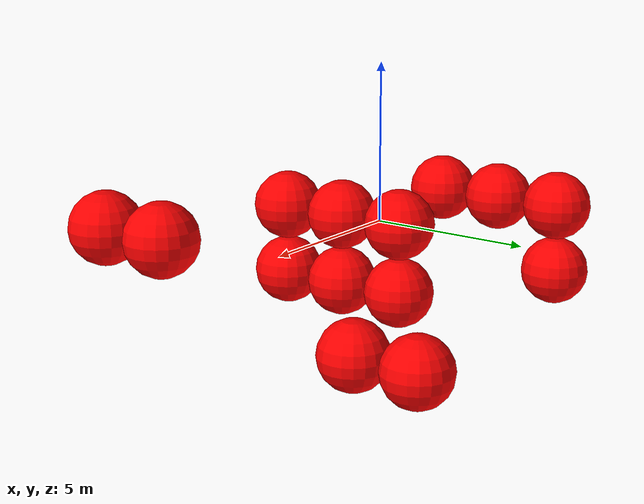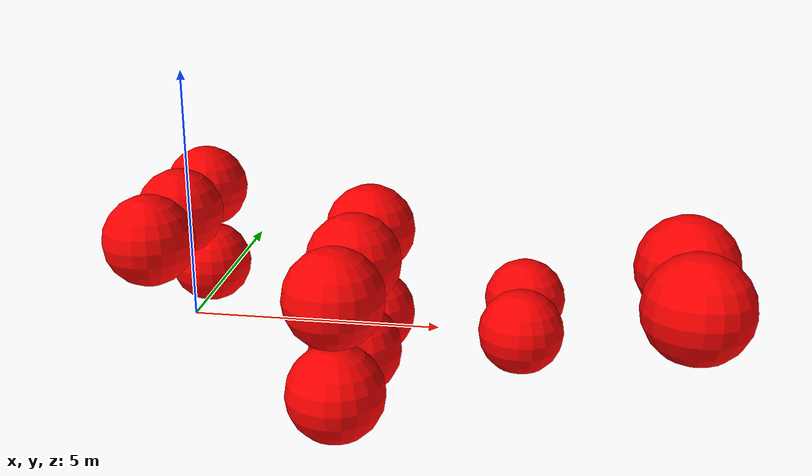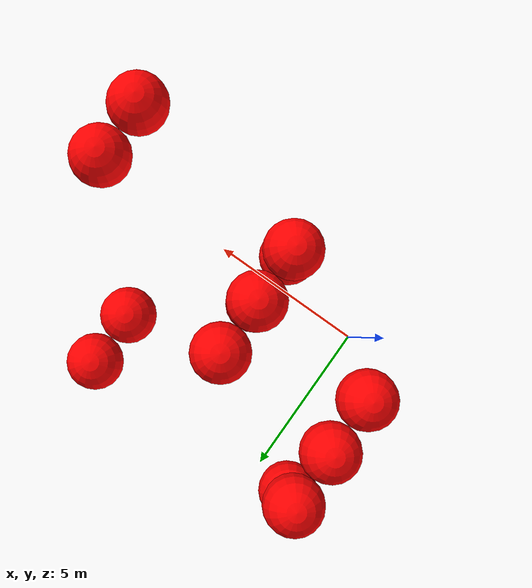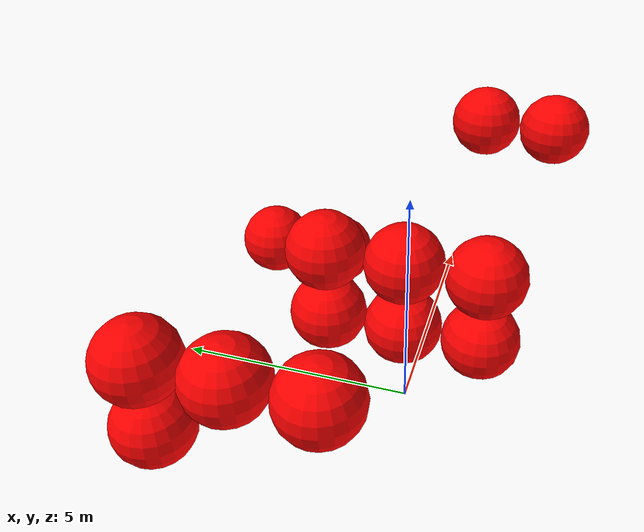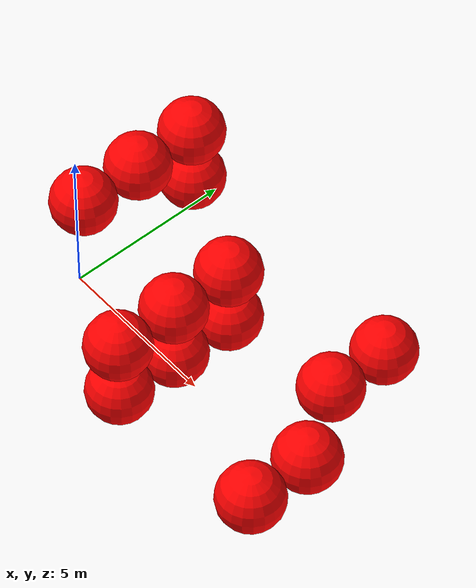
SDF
<sdf version="1.8">
 <world name="3d_world">
  <model name="obstacle_1" canonical_link="obstacle">
   <static>true</static>
   <pose relative_to="world">3.13 -1.17 -1.00 0 0 0</pose>
   <link name="obstacle">
    <pose relative_to="__model__">0.0 0 0.0 0 0 0</pose>
    <visual name="visual">
     <geometry><sphere><radius>1.00</radius></sphere></geometry>
     <material>
      <ambient>1.0 0.0 0.0 1</ambient>
      <diffuse>1.0 0.0 0.0 1</diffuse>
      <specular>1.0 0.0 0.0 1</specular>
     </material>
    </visual>
    <collision name="collision"><geometry><sphere><radius>1.00</radius></sphere></geometry></collision>
    <enable_gravity>false</enable_gravity>
   </link>
   <plugin filename="ignition-gazebo-velocity-control-system" name="ignition::gazebo::systems::VelocityControl">
    <initial_linear>0.00 0.00 0.00</initial_linear>
    <initial_angular>0 0 0</initial_angular>
   </plugin>
   <plugin filename="ignition-gazebo-odometry-publisher-system" name="ignition::gazebo::systems::OdometryPublisher">
    <dimensions>3</dimensions>
   </plugin>
  </model>
  <model name="obstacle_2" canonical_link="obstacle">
   <static>true</static>
   <pose relative_to="world">3.13 0.83 -1.00 0 0 0</pose>
   <link name="obstacle">
    <pose relative_to="__model__">0.0 0 0.0 0 0 0</pose>
    <visual name="visual">
     <geometry><sphere><radius>1.00</radius></sphere></geometry>
     <material>
      <ambient>1.0 0.0 0.0 1</ambient>
      <diffuse>1.0 0.0 0.0 1</diffuse>
      <specular>1.0 0.0 0.0 1</specular>
     </material>
    </visual>
    <collision name="collision"><geometry><sphere><radius>1.00</radius></sphere></geometry></collision>
    <enable_gravity>false</enable_gravity>
   </link>
   <plugin filename="ignition-gazebo-velocity-control-system" name="ignition::gazebo::systems::VelocityControl">
    <initial_linear>0.00 0.00 0.00</initial_linear>
    <initial_angular>0 0 0</initial_angular>
   </plugin>
   <plugin filename="ignition-gazebo-odometry-publisher-system" name="ignition::gazebo::systems::OdometryPublisher">
    <dimensions>3</dimensions>
   </plugin>
  </model>
  <model name="obstacle_3" canonical_link="obstacle">
   <static>true</static>
   <pose relative_to="world">3.13 2.83 -1.00 0 0 0</pose>
   <link name="obstacle">
    <pose relative_to="__model__">0.0 0 0.0 0 0 0</pose>
    <visual name="visual">
     <geometry><sphere><radius>1.00</radius></sphere></geometry>
     <material>
      <ambient>1.0 0.0 0.0 1</ambient>
      <diffuse>1.0 0.0 0.0 1</diffuse>
      <specular>1.0 0.0 0.0 1</specular>
     </material>
    </visual>
    <collision name="collision"><geometry><sphere><radius>1.00</radius></sphere></geometry></collision>
    <enable_gravity>false</enable_gravity>
   </link>
   <plugin filename="ignition-gazebo-velocity-control-system" name="ignition::gazebo::systems::VelocityControl">
    <initial_linear>0.00 0.00 0.00</initial_linear>
    <initial_angular>0 0 0</initial_angular>
   </plugin>
   <plugin filename="ignition-gazebo-odometry-publisher-system" name="ignition::gazebo::systems::OdometryPublisher">
    <dimensions>3</dimensions>
   </plugin>
  </model>
  <model name="obstacle_4" canonical_link="obstacle">
   <static>true</static>
   <pose relative_to="world">3.13 -1.17 1.00 0 0 0</pose>
   <link name="obstacle">
    <pose relative_to="__model__">0.0 0 0.0 0 0 0</pose>
    <visual name="visual">
     <geometry><sphere><radius>1.00</radius></sphere></geometry>
     <material>
      <ambient>1.0 0.0 0.0 1</ambient>
      <diffuse>1.0 0.0 0.0 1</diffuse>
      <specular>1.0 0.0 0.0 1</specular>
     </material>
    </visual>
    <collision name="collision"><geometry><sphere><radius>1.00</radius></sphere></geometry></collision>
    <enable_gravity>false</enable_gravity>
   </link>
   <plugin filename="ignition-gazebo-velocity-control-system" name="ignition::gazebo::systems::VelocityControl">
    <initial_linear>0.00 0.00 0.00</initial_linear>
    <initial_angular>0 0 0</initial_angular>
   </plugin>
   <plugin filename="ignition-gazebo-odometry-publisher-system" name="ignition::gazebo::systems::OdometryPublisher">
    <dimensions>3</dimensions>
   </plugin>
  </model>
  <model name="obstacle_5" canonical_link="obstacle">
   <static>true</static>
   <pose relative_to="world">3.13 0.83 1.00 0 0 0</pose>
   <link name="obstacle">
    <pose relative_to="__model__">0.0 0 0.0 0 0 0</pose>
    <visual name="visual">
     <geometry><sphere><radius>1.00</radius></sphere></geometry>
     <material>
      <ambient>1.0 0.0 0.0 1</ambient>
      <diffuse>1.0 0.0 0.0 1</diffuse>
      <specular>1.0 0.0 0.0 1</specular>
     </material>
    </visual>
    <collision name="collision"><geometry><sphere><radius>1.00</radius></sphere></geometry></collision>
    <enable_gravity>false</enable_gravity>
   </link>
   <plugin filename="ignition-gazebo-velocity-control-system" name="ignition::gazebo::systems::VelocityControl">
    <initial_linear>0.00 0.00 0.00</initial_linear>
    <initial_angular>0 0 0</initial_angular>
   </plugin>
   <plugin filename="ignition-gazebo-odometry-publisher-system" name="ignition::gazebo::systems::OdometryPublisher">
    <dimensions>3</dimensions>
   </plugin>
  </model>
  <model name="obstacle_6" canonical_link="obstacle">
   <static>true</static>
   <pose relative_to="world">3.13 2.83 1.00 0 0 0</pose>
   <link name="obstacle">
    <pose relative_to="__model__">0.0 0 0.0 0 0 0</pose>
    <visual name="visual">
     <geometry><sphere><radius>1.00</radius></sphere></geometry>
     <material>
      <ambient>1.0 0.0 0.0 1</ambient>
      <diffuse>1.0 0.0 0.0 1</diffuse>
      <specular>1.0 0.0 0.0 1</specular>
     </material>
    </visual>
    <collision name="collision"><geometry><sphere><radius>1.00</radius></sphere></geometry></collision>
    <enable_gravity>false</enable_gravity>
   </link>
   <plugin filename="ignition-gazebo-velocity-control-system" name="ignition::gazebo::systems::VelocityControl">
    <initial_linear>0.00 0.00 0.00</initial_linear>
    <initial_angular>0 0 0</initial_angular>
   </plugin>
   <plugin filename="ignition-gazebo-odometry-publisher-system" name="ignition::gazebo::systems::OdometryPublisher">
    <dimensions>3</dimensions>
   </plugin>
  </model>
  <model name="obstacle_15" canonical_link="obstacle">
   <static>true</static>
   <pose relative_to="world">-1.47 5.37 -1.00 0 0 0</pose>
   <link name="obstacle">
    <pose relative_to="__model__">0.0 0 0.0 0 0 0</pose>
    <visual name="visual">
     <geometry><sphere><radius>1.00</radius></sphere></geometry>
     <material>
      <ambient>1.0 0.0 0.0 1</ambient>
      <diffuse>1.0 0.0 0.0 1</diffuse>
      <specular>1.0 0.0 0.0 1</specular>
     </material>
    </visual>
    <collision name="collision"><geometry><sphere><radius>1.00</radius></sphere></geometry></collision>
    <enable_gravity>false</enable_gravity>
   </link>
   <plugin filename="ignition-gazebo-velocity-control-system" name="ignition::gazebo::systems::VelocityControl">
    <initial_linear>0.00 0.00 0.00</initial_linear>
    <initial_angular>0 0 0</initial_angular>
   </plugin>
   <plugin filename="ignition-gazebo-odometry-publisher-system" name="ignition::gazebo::systems::OdometryPublisher">
    <dimensions>3</dimensions>
   </plugin>
  </model>
  <model name="obstacle_16" canonical_link="obstacle">
   <static>true</static>
   <pose relative_to="world">-1.47 1.37 1.00 0 0 0</pose>
   <link name="obstacle">
    <pose relative_to="__model__">0.0 0 0.0 0 0 0</pose>
    <visual name="visual">
     <geometry><sphere><radius>1.00</radius></sphere></geometry>
     <material>
      <ambient>1.0 0.0 0.0 1</ambient>
      <diffuse>1.0 0.0 0.0 1</diffuse>
      <specular>1.0 0.0 0.0 1</specular>
     </material>
    </visual>
    <collision name="collision"><geometry><sphere><radius>1.00</radius></sphere></geometry></collision>
    <enable_gravity>false</enable_gravity>
   </link>
   <plugin filename="ignition-gazebo-velocity-control-system" name="ignition::gazebo::systems::VelocityControl">
    <initial_linear>0.00 0.00 0.00</initial_linear>
    <initial_angular>0 0 0</initial_angular>
   </plugin>
   <plugin filename="ignition-gazebo-odometry-publisher-system" name="ignition::gazebo::systems::OdometryPublisher">
    <dimensions>3</dimensions>
   </plugin>
  </model>
  <model name="obstacle_17" canonical_link="obstacle">
   <static>true</static>
   <pose relative_to="world">-1.47 3.37 1.00 0 0 0</pose>
   <link name="obstacle">
    <pose relative_to="__model__">0.0 0 0.0 0 0 0</pose>
    <visual name="visual">
     <geometry><sphere><radius>1.00</radius></sphere></geometry>
     <material>
      <ambient>1.0 0.0 0.0 1</ambient>
      <diffuse>1.0 0.0 0.0 1</diffuse>
      <specular>1.0 0.0 0.0 1</specular>
     </material>
    </visual>
    <collision name="collision"><geometry><sphere><radius>1.00</radius></sphere></geometry></collision>
    <enable_gravity>false</enable_gravity>
   </link>
   <plugin filename="ignition-gazebo-velocity-control-system" name="ignition::gazebo::systems::VelocityControl">
    <initial_linear>0.00 0.00 0.00</initial_linear>
    <initial_angular>0 0 0</initial_angular>
   </plugin>
   <plugin filename="ignition-gazebo-odometry-publisher-system" name="ignition::gazebo::systems::OdometryPublisher">
    <dimensions>3</dimensions>
   </plugin>
  </model>
  <model name="obstacle_18" canonical_link="obstacle">
   <static>true</static>
   <pose relative_to="world">-1.47 5.37 1.00 0 0 0</pose>
   <link name="obstacle">
    <pose relative_to="__model__">0.0 0 0.0 0 0 0</pose>
    <visual name="visual">
     <geometry><sphere><radius>1.00</radius></sphere></geometry>
     <material>
      <ambient>1.0 0.0 0.0 1</ambient>
      <diffuse>1.0 0.0 0.0 1</diffuse>
      <specular>1.0 0.0 0.0 1</specular>
     </material>
    </visual>
    <collision name="collision"><geometry><sphere><radius>1.00</radius></sphere></geometry></collision>
    <enable_gravity>false</enable_gravity>
   </link>
   <plugin filename="ignition-gazebo-velocity-control-system" name="ignition::gazebo::systems::VelocityControl">
    <initial_linear>0.00 0.00 0.00</initial_linear>
    <initial_angular>0 0 0</initial_angular>
   </plugin>
   <plugin filename="ignition-gazebo-odometry-publisher-system" name="ignition::gazebo::systems::OdometryPublisher">
    <dimensions>3</dimensions>
   </plugin>
  </model>
  <model name="obstacle_23" canonical_link="obstacle">
   <static>false</static>
   <pose relative_to="world">6.52 3.70 -1.67 0 0 0</pose>
   <link name="obstacle">
    <pose relative_to="__model__">0.0 0 0.0 0 0 0</pose>
    <visual name="visual">
     <geometry><sphere><radius>1.00</radius></sphere></geometry>
     <material>
      <ambient>1.0 0.0 0.0 1</ambient>
      <diffuse>1.0 0.0 0.0 1</diffuse>
      <specular>1.0 0.0 0.0 1</specular>
     </material>
    </visual>
    <collision name="collision"><geometry><sphere><radius>1.00</radius></sphere></geometry></collision>
    <enable_gravity>false</enable_gravity>
   </link>
   <plugin filename="ignition-gazebo-velocity-control-system" name="ignition::gazebo::systems::VelocityControl">
    <initial_linear>0.00 -1.62 0.60</initial_linear>
    <initial_angular>0 0 0</initial_angular>
   </plugin>
   <plugin filename="ignition-gazebo-odometry-publisher-system" name="ignition::gazebo::systems::OdometryPublisher">
    <dimensions>3</dimensions>
   </plugin>
  </model>
  <model name="obstacle_24" canonical_link="obstacle">
   <static>false</static>
   <pose relative_to="world">6.52 5.70 -1.67 0 0 0</pose>
   <link name="obstacle">
    <pose relative_to="__model__">0.0 0 0.0 0 0 0</pose>
    <visual name="visual">
     <geometry><sphere><radius>1.00</radius></sphere></geometry>
     <material>
      <ambient>1.0 0.0 0.0 1</ambient>
      <diffuse>1.0 0.0 0.0 1</diffuse>
      <specular>1.0 0.0 0.0 1</specular>
     </material>
    </visual>
    <collision name="collision"><geometry><sphere><radius>1.00</radius></sphere></geometry></collision>
    <enable_gravity>false</enable_gravity>
   </link>
   <plugin filename="ignition-gazebo-velocity-control-system" name="ignition::gazebo::systems::VelocityControl">
    <initial_linear>0.00 -1.62 0.60</initial_linear>
    <initial_angular>0 0 0</initial_angular>
   </plugin>
   <plugin filename="ignition-gazebo-odometry-publisher-system" name="ignition::gazebo::systems::OdometryPublisher">
    <dimensions>3</dimensions>
   </plugin>
  </model>
  <model name="obstacle_25" canonical_link="obstacle">
   <static>false</static>
   <pose relative_to="world">9.69 -2.00 1.57 0 0 0</pose>
   <link name="obstacle">
    <pose relative_to="__model__">0.0 0 0.0 0 0 0</pose>
    <visual name="visual">
     <geometry><sphere><radius>1.00</radius></sphere></geometry>
     <material>
      <ambient>1.0 0.0 0.0 1</ambient>
      <diffuse>1.0 0.0 0.0 1</diffuse>
      <specular>1.0 0.0 0.0 1</specular>
     </material>
    </visual>
    <collision name="collision"><geometry><sphere><radius>1.00</radius></sphere></geometry></collision>
    <enable_gravity>false</enable_gravity>
   </link>
   <plugin filename="ignition-gazebo-velocity-control-system" name="ignition::gazebo::systems::VelocityControl">
    <initial_linear>0.00 0.71 -1.31</initial_linear>
    <initial_angular>0 0 0</initial_angular>
   </plugin>
   <plugin filename="ignition-gazebo-odometry-publisher-system" name="ignition::gazebo::systems::OdometryPublisher">
    <dimensions>3</dimensions>
   </plugin>
  </model>
  <model name="obstacle_26" canonical_link="obstacle">
   <static>false</static>
   <pose relative_to="world">9.69 0.00 1.57 0 0 0</pose>
   <link name="obstacle">
    <pose relative_to="__model__">0.0 0 0.0 0 0 0</pose>
    <visual name="visual">
     <geometry><sphere><radius>1.00</radius></sphere></geometry>
     <material>
      <ambient>1.0 0.0 0.0 1</ambient>
      <diffuse>1.0 0.0 0.0 1</diffuse>
      <specular>1.0 0.0 0.0 1</specular>
     </material>
    </visual>
    <collision name="collision"><geometry><sphere><radius>1.00</radius></sphere></geometry></collision>
    <enable_gravity>false</enable_gravity>
   </link>
   <plugin filename="ignition-gazebo-velocity-control-system" name="ignition::gazebo::systems::VelocityControl">
    <initial_linear>0.00 0.71 -1.31</initial_linear>
    <initial_angular>0 0 0</initial_angular>
   </plugin>
   <plugin filename="ignition-gazebo-odometry-publisher-system" name="ignition::gazebo::systems::OdometryPublisher">
    <dimensions>3</dimensions>
   </plugin>
  </model>
 </world>
</sdf>
